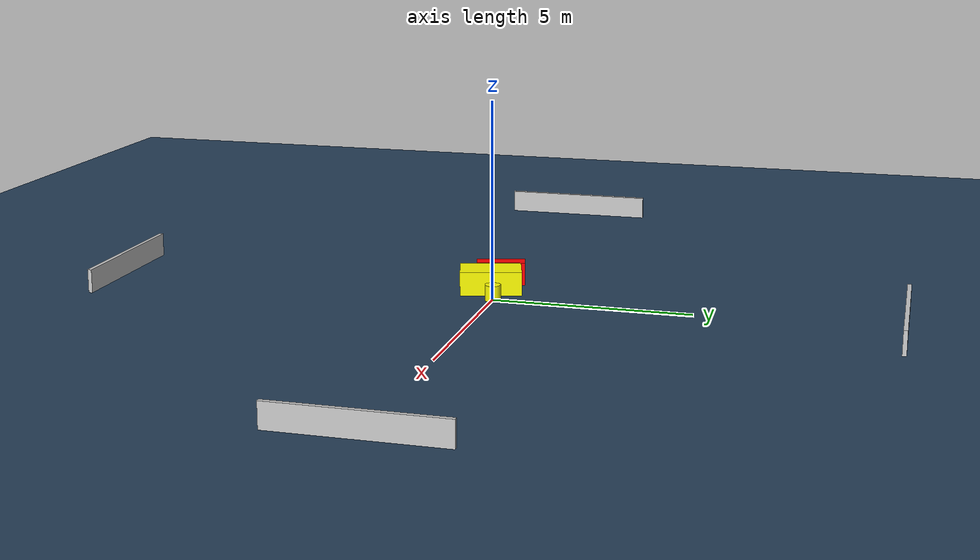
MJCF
<?xml version="1.0" ?>
<mujoco model="generated_environment">
  <option timestep="0.01" integrator="RK4" cone="elliptic"/>
  <default>
    <geom density="1"/>
  </default>
  <asset>
    <texture builtin="gradient" height="3072" name="skybox" rgb1="0.3 0.5 0.7" rgb2="0 0 0" type="skybox" width="512"/>
    <texture builtin="checker" height="300" name="groundplane" rgb1="0.2 0.3 0.4" rgb2="0.1 0.2 0.3" type="2d" width="300"/>
    <material name="groundplane" reflectance="0.2" texrepeat="5 5" texture="groundplane"/>
  </asset>
  <worldbody>
    <light dir="0 0 -1" directional="true" pos="0 0 1.5"/>
    <geom condim="3" friction="0.5 0.005 0.001" material="groundplane" name="floor" pos="0 0 0" size="0 0 0.05" type="plane"/>
    <body name="walls">
      <geom name="wall_1" condim="4" pos="-10.0 0.0 0.3" rgba="0.800000011920929 0.800000011920929 0.800000011920929 1.0" size="0.05 2.0 0.3" type="box"/>
      <geom name="wall_2" condim="4" pos="10.0 0.0 0.3" rgba="0.800000011920929 0.800000011920929 0.800000011920929 1.0" size="0.05 2.0 0.3" type="box"/>
      <geom name="wall_3" condim="4" pos="0.0 -10.0 0.3" rgba="0.800000011920929 0.800000011920929 0.800000011920929 1.0" size="2.0 0.05 0.3" type="box"/>
      <geom name="wall_4" condim="4" pos="0.0 10.0 0.3" rgba="0.800000011920929 0.800000011920929 0.800000011920929 1.0" size="2.0 0.05 0.3" type="box"/>
    </body>
    <body name="robot">
      <joint name="joint_x" type="slide" pos="0 0 0" axis="1 0 0"/>
      <joint name="joint_y" type="slide" pos="0 0 0" axis="0 1 0"/>
      <geom name="robot" type="cylinder" pos="0.0 0.0 0.2" size="0.2 0.2 0.0" mass="5.0" friction="1.0 0.005 0.0001" condim="4" rgba="1.0 1.0 0.0 1.0"/>
    </body>
    <body name="obstacle_1_movable">
      <geom name="obstacle_1_movable" condim="4" pos="-0.8154751505201568 -0.2736405351431073 0.3" euler="0 0 285.8523044749593" friction="0.0 0.005 0.001" rgba="1.0 1.0 0.0 1.0" size="0.77758828533055 0.4612784486282298 0.3" type="box" mass="0.1"/>
      <joint type="free"/>
    </body>
    <body name="obstacle_2_static">
      <geom name="obstacle_2_static" condim="4" pos="-1.587855285212541 -0.21087456408106262 0.3" euler="0 0 194.55534290349584" friction="0.0 0.005 0.001" rgba="1.0 0.0 0.0 1.0" size="0.21517463842833043 0.621459435873692 0.3" type="box"/>
    </body>
  </worldbody>
  <actuator>
    <motor name="actuator_x" joint="joint_x" gear="1" ctrlrange="-1 1"/>
    <motor name="actuator_y" joint="joint_y" gear="1" ctrlrange="-1 1"/>
  </actuator>
</mujoco>
